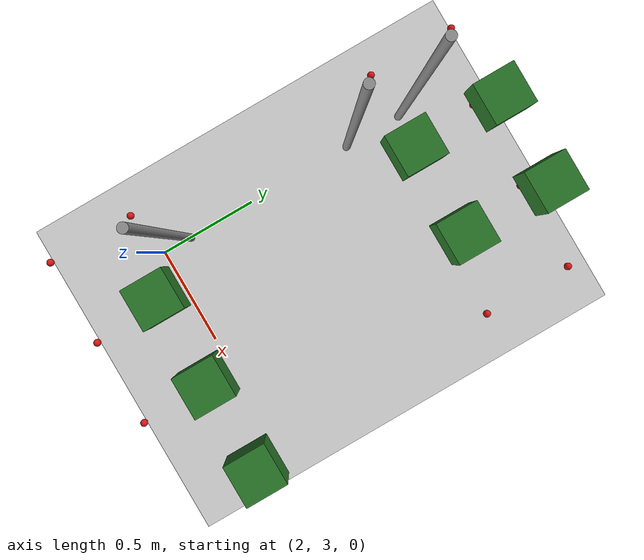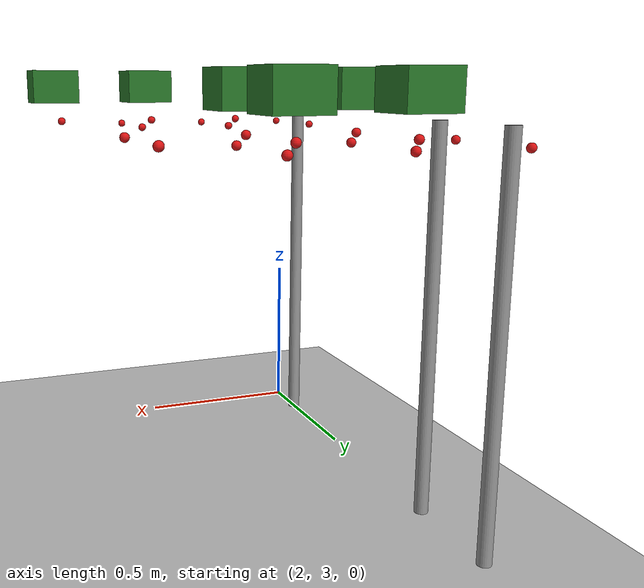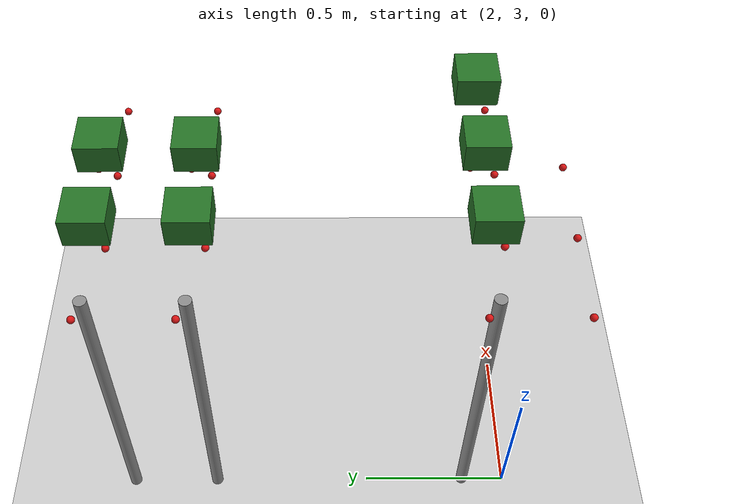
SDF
<sdf version="1.7">
 <world name="irish_polytunnel">
  <include><uri>model://sun</uri></include>
  <include><uri>model://ground_plane</uri></include>
  <model name="row2_L_plant6_berry_1">
   <static>true</static>
   <pose>1.970 2.880 1.050 0 0 0</pose>
   <link name="link">
    <visual name="visual">
     <geometry><sphere><radius>0.012</radius></sphere></geometry>
     <material><ambient>0.75 0.05 0.05 1</ambient><diffuse>0.85 0.08 0.08 1</diffuse></material>
    </visual>
   </link>
  </model>
  <model name="row2_L_plant7_berry_1">
   <static>true</static>
   <pose>2.270 2.880 1.050 0 0 0</pose>
   <link name="link">
    <visual name="visual">
     <geometry><sphere><radius>0.012</radius></sphere></geometry>
     <material><ambient>0.75 0.05 0.05 1</ambient><diffuse>0.85 0.08 0.08 1</diffuse></material>
    </visual>
   </link>
  </model>
  <model name="row2_L_plant8_berry_1">
   <static>true</static>
   <pose>2.570 2.880 1.050 0 0 0</pose>
   <link name="link">
    <visual name="visual">
     <geometry><sphere><radius>0.012</radius></sphere></geometry>
     <material><ambient>0.75 0.05 0.05 1</ambient><diffuse>0.85 0.08 0.08 1</diffuse></material>
    </visual>
   </link>
  </model>
  <model name="row3_L_post1">
   <static>true</static>
   <pose>2.000 4.050 0.550 0 0 0</pose>
   <link name="link">
    <collision name="collision">
     <geometry><cylinder><radius>0.02</radius><length>1.100</length></cylinder></geometry>
    </collision>
    <visual name="visual">
     <geometry><cylinder><radius>0.02</radius><length>1.100</length></cylinder></geometry>
     <material><ambient>0.5 0.5 0.5 1</ambient><diffuse>0.55 0.55 0.55 1</diffuse></material>
    </visual>
   </link>
  </model>
  <model name="row3_L_plant6_berry_1">
   <static>true</static>
   <pose>1.970 4.080 1.050 0 0 0</pose>
   <link name="link">
    <visual name="visual">
     <geometry><sphere><radius>0.012</radius></sphere></geometry>
     <material><ambient>0.75 0.05 0.05 1</ambient><diffuse>0.85 0.08 0.08 1</diffuse></material>
    </visual>
   </link>
  </model>
  <model name="row3_L_plant7_foliage">
   <static>true</static>
   <pose>2.250 4.050 1.180 0 0 0</pose>
   <link name="link">
    <visual name="visual">
     <geometry><box><size>0.14 0.14 0.10</size></box></geometry>
     <material><ambient>0.10 0.35 0.10 1</ambient><diffuse>0.15 0.45 0.15 1</diffuse></material>
    </visual>
   </link>
  </model>
  <model name="row3_L_plant7_berry_0">
   <static>true</static>
   <pose>2.220 4.010 1.070 0 0 0</pose>
   <link name="link">
    <visual name="visual">
     <geometry><sphere><radius>0.012</radius></sphere></geometry>
     <material><ambient>0.75 0.05 0.05 1</ambient><diffuse>0.85 0.08 0.08 1</diffuse></material>
    </visual>
   </link>
  </model>
  <model name="row3_L_plant7_berry_1">
   <static>true</static>
   <pose>2.270 4.080 1.050 0 0 0</pose>
   <link name="link">
    <visual name="visual">
     <geometry><sphere><radius>0.012</radius></sphere></geometry>
     <material><ambient>0.75 0.05 0.05 1</ambient><diffuse>0.85 0.08 0.08 1</diffuse></material>
    </visual>
   </link>
  </model>
  <model name="row3_L_plant8_foliage">
   <static>true</static>
   <pose>2.550 4.050 1.180 0 0 0</pose>
   <link name="link">
    <visual name="visual">
     <geometry><box><size>0.14 0.14 0.10</size></box></geometry>
     <material><ambient>0.10 0.35 0.10 1</ambient><diffuse>0.15 0.45 0.15 1</diffuse></material>
    </visual>
   </link>
  </model>
  <model name="row3_L_plant8_berry_0">
   <static>true</static>
   <pose>2.520 4.010 1.070 0 0 0</pose>
   <link name="link">
    <visual name="visual">
     <geometry><sphere><radius>0.012</radius></sphere></geometry>
     <material><ambient>0.75 0.05 0.05 1</ambient><diffuse>0.85 0.08 0.08 1</diffuse></material>
    </visual>
   </link>
  </model>
  <model name="row3_L_plant8_berry_1">
   <static>true</static>
   <pose>2.570 4.080 1.050 0 0 0</pose>
   <link name="link">
    <visual name="visual">
     <geometry><sphere><radius>0.012</radius></sphere></geometry>
     <material><ambient>0.75 0.05 0.05 1</ambient><diffuse>0.85 0.08 0.08 1</diffuse></material>
    </visual>
   </link>
  </model>
  <model name="row3_L_plant9_berry_0">
   <static>true</static>
   <pose>2.820 4.010 1.070 0 0 0</pose>
   <link name="link">
    <visual name="visual">
     <geometry><sphere><radius>0.012</radius></sphere></geometry>
     <material><ambient>0.75 0.05 0.05 1</ambient><diffuse>0.85 0.08 0.08 1</diffuse></material>
    </visual>
   </link>
  </model>
  <model name="row3_R_post1">
   <static>true</static>
   <pose>2.000 3.150 0.550 0 0 0</pose>
   <link name="link">
    <collision name="collision">
     <geometry><cylinder><radius>0.02</radius><length>1.100</length></cylinder></geometry>
    </collision>
    <visual name="visual">
     <geometry><cylinder><radius>0.02</radius><length>1.100</length></cylinder></geometry>
     <material><ambient>0.5 0.5 0.5 1</ambient><diffuse>0.55 0.55 0.55 1</diffuse></material>
    </visual>
   </link>
  </model>
  <model name="row3_R_plant6_berry_1">
   <static>true</static>
   <pose>1.970 3.180 1.050 0 0 0</pose>
   <link name="link">
    <visual name="visual">
     <geometry><sphere><radius>0.012</radius></sphere></geometry>
     <material><ambient>0.75 0.05 0.05 1</ambient><diffuse>0.85 0.08 0.08 1</diffuse></material>
    </visual>
   </link>
  </model>
  <model name="row3_R_plant7_foliage">
   <static>true</static>
   <pose>2.250 3.150 1.180 0 0 0</pose>
   <link name="link">
    <visual name="visual">
     <geometry><box><size>0.14 0.14 0.10</size></box></geometry>
     <material><ambient>0.10 0.35 0.10 1</ambient><diffuse>0.15 0.45 0.15 1</diffuse></material>
    </visual>
   </link>
  </model>
  <model name="row3_R_plant7_berry_0">
   <static>true</static>
   <pose>2.220 3.110 1.070 0 0 0</pose>
   <link name="link">
    <visual name="visual">
     <geometry><sphere><radius>0.012</radius></sphere></geometry>
     <material><ambient>0.75 0.05 0.05 1</ambient><diffuse>0.85 0.08 0.08 1</diffuse></material>
    </visual>
   </link>
  </model>
  <model name="row3_R_plant7_berry_1">
   <static>true</static>
   <pose>2.270 3.180 1.050 0 0 0</pose>
   <link name="link">
    <visual name="visual">
     <geometry><sphere><radius>0.012</radius></sphere></geometry>
     <material><ambient>0.75 0.05 0.05 1</ambient><diffuse>0.85 0.08 0.08 1</diffuse></material>
    </visual>
   </link>
  </model>
  <model name="row3_R_plant8_foliage">
   <static>true</static>
   <pose>2.550 3.150 1.180 0 0 0</pose>
   <link name="link">
    <visual name="visual">
     <geometry><box><size>0.14 0.14 0.10</size></box></geometry>
     <material><ambient>0.10 0.35 0.10 1</ambient><diffuse>0.15 0.45 0.15 1</diffuse></material>
    </visual>
   </link>
  </model>
  <model name="row3_R_plant8_berry_0">
   <static>true</static>
   <pose>2.520 3.110 1.070 0 0 0</pose>
   <link name="link">
    <visual name="visual">
     <geometry><sphere><radius>0.012</radius></sphere></geometry>
     <material><ambient>0.75 0.05 0.05 1</ambient><diffuse>0.85 0.08 0.08 1</diffuse></material>
    </visual>
   </link>
  </model>
  <model name="row3_R_plant8_berry_1">
   <static>true</static>
   <pose>2.570 3.180 1.050 0 0 0</pose>
   <link name="link">
    <visual name="visual">
     <geometry><sphere><radius>0.012</radius></sphere></geometry>
     <material><ambient>0.75 0.05 0.05 1</ambient><diffuse>0.85 0.08 0.08 1</diffuse></material>
    </visual>
   </link>
  </model>
  <model name="row3_R_plant9_foliage">
   <static>true</static>
   <pose>2.850 3.150 1.180 0 0 0</pose>
   <link name="link">
    <visual name="visual">
     <geometry><box><size>0.14 0.14 0.10</size></box></geometry>
     <material><ambient>0.10 0.35 0.10 1</ambient><diffuse>0.15 0.45 0.15 1</diffuse></material>
    </visual>
   </link>
  </model>
  <model name="row3_R_plant9_berry_0">
   <static>true</static>
   <pose>2.820 3.110 1.070 0 0 0</pose>
   <link name="link">
    <visual name="visual">
     <geometry><sphere><radius>0.012</radius></sphere></geometry>
     <material><ambient>0.75 0.05 0.05 1</ambient><diffuse>0.85 0.08 0.08 1</diffuse></material>
    </visual>
   </link>
  </model>
  <model name="row4_R_post1">
   <static>true</static>
   <pose>2.000 4.350 0.550 0 0 0</pose>
   <link name="link">
    <collision name="collision">
     <geometry><cylinder><radius>0.02</radius><length>1.100</length></cylinder></geometry>
    </collision>
    <visual name="visual">
     <geometry><cylinder><radius>0.02</radius><length>1.100</length></cylinder></geometry>
     <material><ambient>0.5 0.5 0.5 1</ambient><diffuse>0.55 0.55 0.55 1</diffuse></material>
    </visual>
   </link>
  </model>
  <model name="row4_R_plant6_berry_1">
   <static>true</static>
   <pose>1.970 4.380 1.050 0 0 0</pose>
   <link name="link">
    <visual name="visual">
     <geometry><sphere><radius>0.012</radius></sphere></geometry>
     <material><ambient>0.75 0.05 0.05 1</ambient><diffuse>0.85 0.08 0.08 1</diffuse></material>
    </visual>
   </link>
  </model>
  <model name="row4_R_plant7_foliage">
   <static>true</static>
   <pose>2.250 4.350 1.180 0 0 0</pose>
   <link name="link">
    <visual name="visual">
     <geometry><box><size>0.14 0.14 0.10</size></box></geometry>
     <material><ambient>0.10 0.35 0.10 1</ambient><diffuse>0.15 0.45 0.15 1</diffuse></material>
    </visual>
   </link>
  </model>
  <model name="row4_R_plant7_berry_0">
   <static>true</static>
   <pose>2.220 4.310 1.070 0 0 0</pose>
   <link name="link">
    <visual name="visual">
     <geometry><sphere><radius>0.012</radius></sphere></geometry>
     <material><ambient>0.75 0.05 0.05 1</ambient><diffuse>0.85 0.08 0.08 1</diffuse></material>
    </visual>
   </link>
  </model>
  <model name="row4_R_plant7_berry_1">
   <static>true</static>
   <pose>2.270 4.380 1.050 0 0 0</pose>
   <link name="link">
    <visual name="visual">
     <geometry><sphere><radius>0.012</radius></sphere></geometry>
     <material><ambient>0.75 0.05 0.05 1</ambient><diffuse>0.85 0.08 0.08 1</diffuse></material>
    </visual>
   </link>
  </model>
  <model name="row4_R_plant8_foliage">
   <static>true</static>
   <pose>2.550 4.350 1.180 0 0 0</pose>
   <link name="link">
    <visual name="visual">
     <geometry><box><size>0.14 0.14 0.10</size></box></geometry>
     <material><ambient>0.10 0.35 0.10 1</ambient><diffuse>0.15 0.45 0.15 1</diffuse></material>
    </visual>
   </link>
  </model>
  <model name="row4_R_plant8_berry_0">
   <static>true</static>
   <pose>2.520 4.310 1.070 0 0 0</pose>
   <link name="link">
    <visual name="visual">
     <geometry><sphere><radius>0.012</radius></sphere></geometry>
     <material><ambient>0.75 0.05 0.05 1</ambient><diffuse>0.85 0.08 0.08 1</diffuse></material>
    </visual>
   </link>
  </model>
  <model name="row4_R_plant8_berry_1">
   <static>true</static>
   <pose>2.570 4.380 1.050 0 0 0</pose>
   <link name="link">
    <visual name="visual">
     <geometry><sphere><radius>0.012</radius></sphere></geometry>
     <material><ambient>0.75 0.05 0.05 1</ambient><diffuse>0.85 0.08 0.08 1</diffuse></material>
    </visual>
   </link>
  </model>
  <model name="row4_R_plant9_berry_0">
   <static>true</static>
   <pose>2.820 4.310 1.070 0 0 0</pose>
   <link name="link">
    <visual name="visual">
     <geometry><sphere><radius>0.012</radius></sphere></geometry>
     <material><ambient>0.75 0.05 0.05 1</ambient><diffuse>0.85 0.08 0.08 1</diffuse></material>
    </visual>
   </link>
  </model>
 </world>
</sdf>
